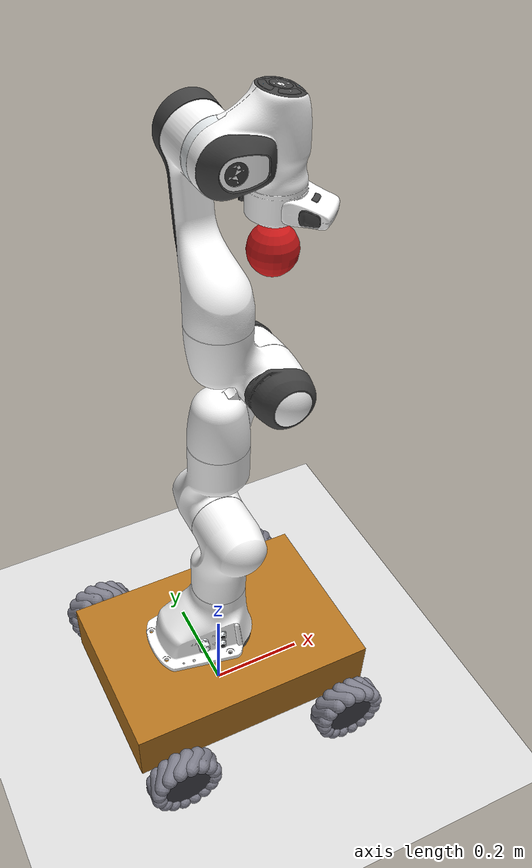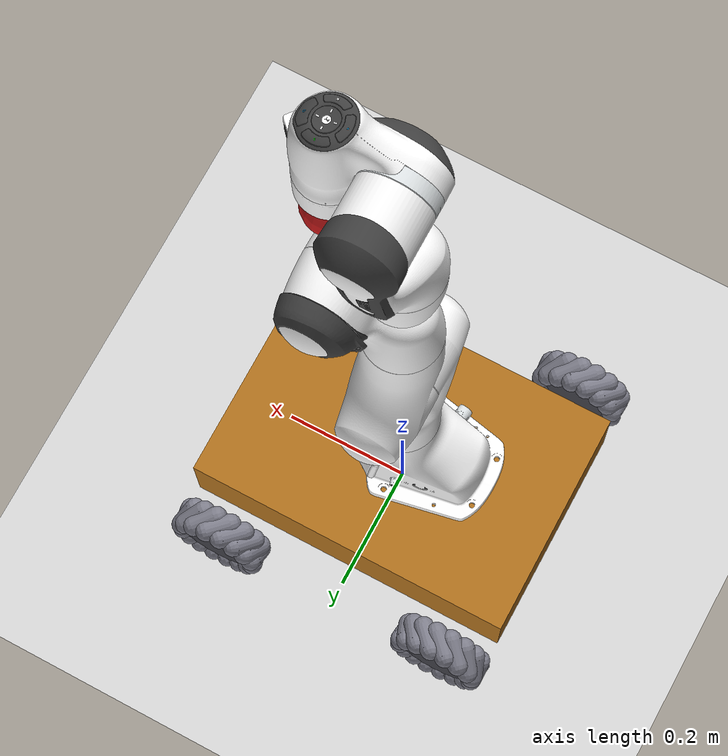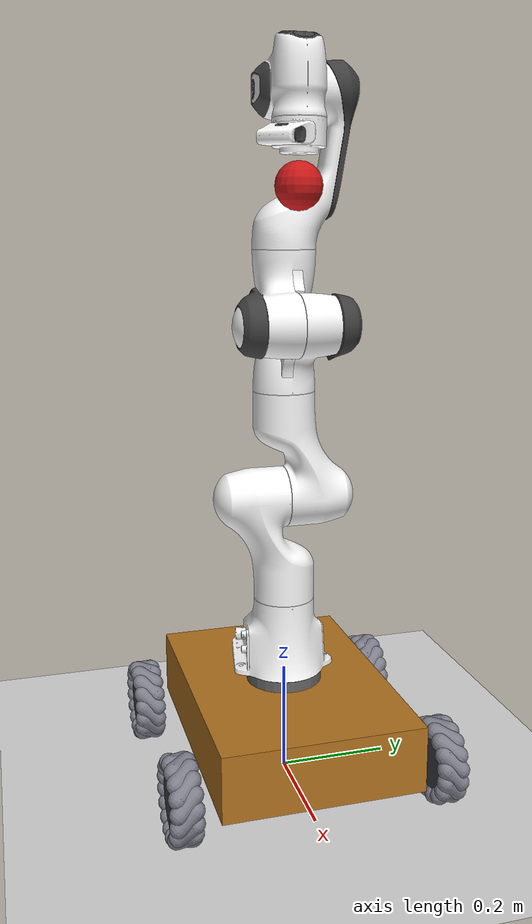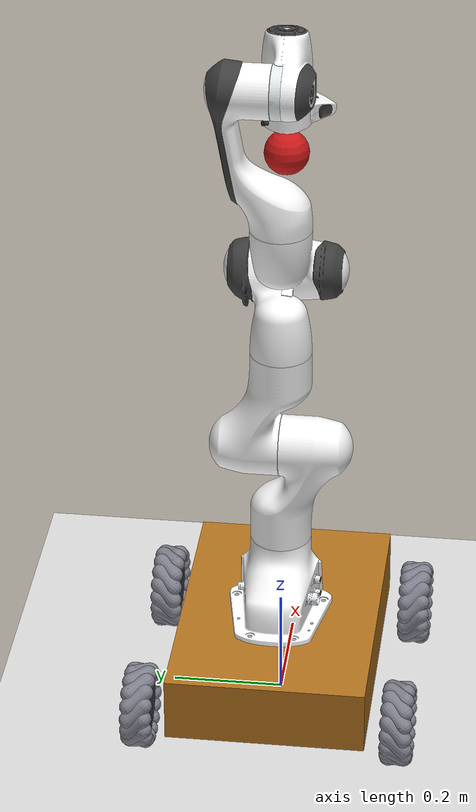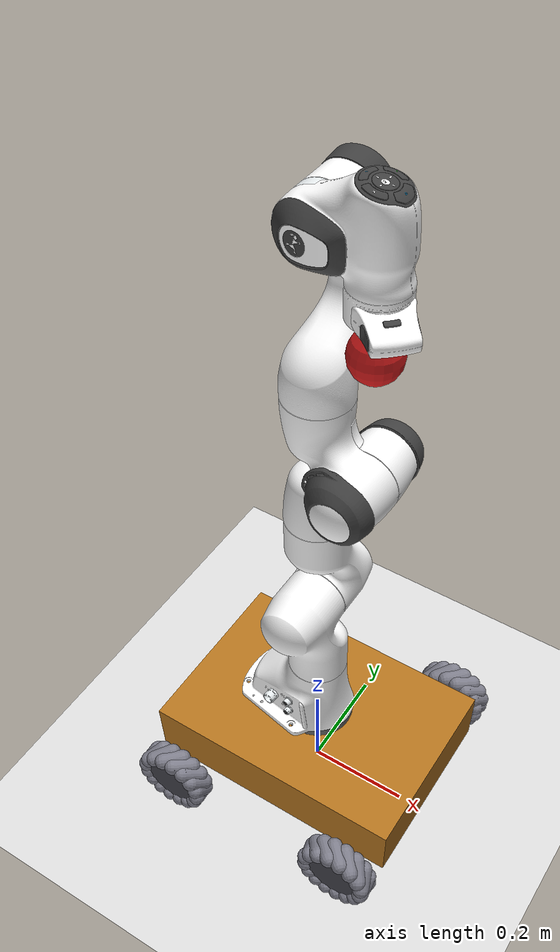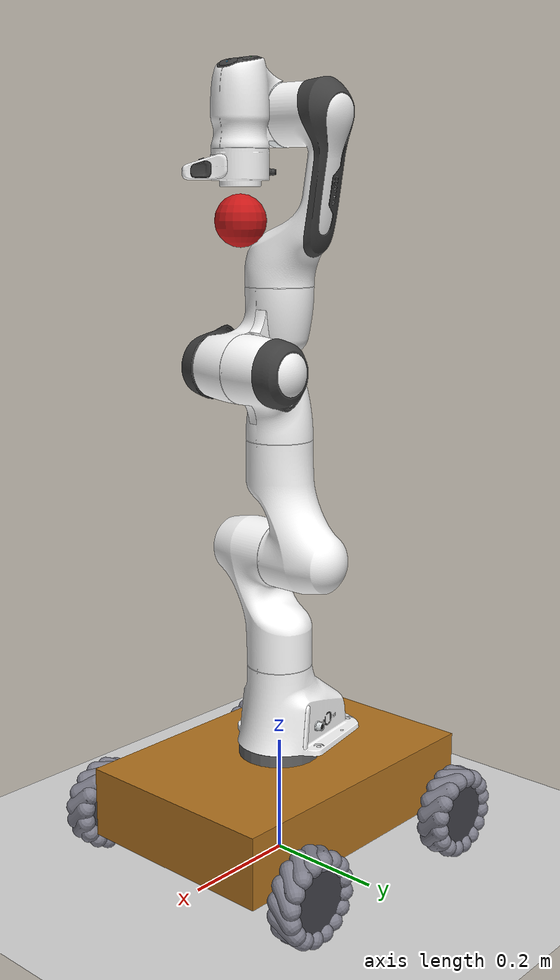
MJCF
<mujoco model="robobench_scene">
  <include file="robot.xml"/>
  <statistic center="0 0 0.3" extent="1.2"/>
  <worldbody>
    <light pos="0 0 3" dir="0 0 -1" directional="true"/>
    <geom name="floor" type="plane" size="0 0 0.05" contype="1" conaffinity="3"
          friction="0.9 0.005 0.0001" rgba="0.85 0.85 0.85 1"/>
  </worldbody>
</mujoco>

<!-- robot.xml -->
<mujoco model="robobench_base">
  <compiler angle="radian" meshdir="../../../../../assets/robots/franka_emika_panda/assets/"/>

  <option impratio="10" integrator="implicitfast" cone="elliptic">
    <flag multiccd="enable"/>
  </option>

  <size nkey="1"/>

  <default>
    <default class="arm_main">
      <default class="arm_panda">
        <material shininess="0.25"/>
        <joint range="-2.8973 2.8973" armature="0.1" damping="1"/>
        <site size="0.001 0.005 0.005" group="4" rgba="0.5 0.5 0.5 0.3"/>
        <general ctrlrange="-2.8973 2.8973" forcerange="-87 87" biastype="affine"/>
        <default class="arm_finger">
          <joint type="slide" range="0 0.04"/>
        </default>
        <default class="arm_panda/visual">
          <geom type="mesh" contype="0" conaffinity="0" group="2"/>
        </default>
        <default class="arm_panda/collision">
          <geom type="mesh" group="3"/>
        </default>
      </default>
    </default>
  </default>

  <asset>
    <material name="arm_white" class="arm_panda"/>
    <material name="arm_off_white" class="arm_panda" rgba="0.901961 0.921569 0.929412 1"/>
    <material name="arm_dark_grey" class="arm_panda" rgba="0.25 0.25 0.25 1"/>
    <material name="arm_green" class="arm_panda" rgba="0 1 0 1"/>
    <material name="arm_light_blue" class="arm_panda" rgba="0.039216 0.541176 0.780392 1"/>
    <mesh name="arm_link0_c" file="link0.stl"/>
    <mesh name="arm_link1_c" file="link1.stl"/>
    <mesh name="arm_link2_c" file="link2.stl"/>
    <mesh name="arm_link3_c" file="link3.stl"/>
    <mesh name="arm_link4_c" file="link4.stl"/>
    <mesh name="arm_link5_c0" file="link5_collision_0.obj"/>
    <mesh name="arm_link5_c1" file="link5_collision_1.obj"/>
    <mesh name="arm_link5_c2" file="link5_collision_2.obj"/>
    <mesh name="arm_link6_c" file="link6.stl"/>
    <mesh name="arm_link7_c" file="link7.stl"/>
    <mesh name="arm_link0_0" file="link0_0.obj"/>
    <mesh name="arm_link0_1" file="link0_1.obj"/>
    <mesh name="arm_link0_2" file="link0_2.obj"/>
    <mesh name="arm_link0_3" file="link0_3.obj"/>
    <mesh name="arm_link0_4" file="link0_4.obj"/>
    <mesh name="arm_link0_5" file="link0_5.obj"/>
    <mesh name="arm_link0_7" file="link0_7.obj"/>
    <mesh name="arm_link0_8" file="link0_8.obj"/>
    <mesh name="arm_link0_9" file="link0_9.obj"/>
    <mesh name="arm_link0_10" file="link0_10.obj"/>
    <mesh name="arm_link0_11" file="link0_11.obj"/>
    <mesh name="arm_link1" file="link1.obj"/>
    <mesh name="arm_link2" file="link2.obj"/>
    <mesh name="arm_link3_0" file="link3_0.obj"/>
    <mesh name="arm_link3_1" file="link3_1.obj"/>
    <mesh name="arm_link3_2" file="link3_2.obj"/>
    <mesh name="arm_link3_3" file="link3_3.obj"/>
    <mesh name="arm_link4_0" file="link4_0.obj"/>
    <mesh name="arm_link4_1" file="link4_1.obj"/>
    <mesh name="arm_link4_2" file="link4_2.obj"/>
    <mesh name="arm_link4_3" file="link4_3.obj"/>
    <mesh name="arm_link5_0" file="link5_0.obj"/>
    <mesh name="arm_link5_1" file="link5_1.obj"/>
    <mesh name="arm_link5_2" file="link5_2.obj"/>
    <mesh name="arm_link6_0" file="link6_0.obj"/>
    <mesh name="arm_link6_1" file="link6_1.obj"/>
    <mesh name="arm_link6_2" file="link6_2.obj"/>
    <mesh name="arm_link6_3" file="link6_3.obj"/>
    <mesh name="arm_link6_4" file="link6_4.obj"/>
    <mesh name="arm_link6_5" file="link6_5.obj"/>
    <mesh name="arm_link6_6" file="link6_6.obj"/>
    <mesh name="arm_link6_7" file="link6_7.obj"/>
    <mesh name="arm_link6_8" file="link6_8.obj"/>
    <mesh name="arm_link6_9" file="link6_9.obj"/>
    <mesh name="arm_link6_10" file="link6_10.obj"/>
    <mesh name="arm_link6_11" file="link6_11.obj"/>
    <mesh name="arm_link6_12" file="link6_12.obj"/>
    <mesh name="arm_link6_13" file="link6_13.obj"/>
    <mesh name="arm_link6_14" file="link6_14.obj"/>
    <mesh name="arm_link6_15" file="link6_15.obj"/>
    <mesh name="arm_link6_16" file="link6_16.obj"/>
    <mesh name="arm_link7_0" file="link7_0.obj"/>
    <mesh name="arm_link7_1" file="link7_1.obj"/>
    <mesh name="arm_link7_2" file="link7_2.obj"/>
    <mesh name="arm_link7_3" file="link7_3.obj"/>
    <mesh name="arm_link7_4" file="link7_4.obj"/>
    <mesh name="arm_link7_5" file="link7_5.obj"/>
    <mesh name="arm_link7_6" file="link7_6.obj"/>
    <mesh name="arm_link7_7" file="link7_7.obj"/>
  </asset>

  <worldbody>
    <body name="base" pos="0 0 0.076">
      <joint name="base_free" type="free"/>
      <geom name="chassis" size="0.26 0.18 0.06" pos="0 0 0.045" type="box" mass="18" rgba="0.7 0.45 0.12 1"/>
      <geom name="arm_mount" size="0.07 0.01" pos="0 0 0.115" type="cylinder" mass="1" rgba="0.4 0.4 0.4 1"/>
      <site name="arm_mount_site" pos="0 0 0.125" size="0.01"/>
      <site name="base_center" pos="0 0 0" size="0.01"/>
      <body name="battery" pos="0 0 0.02">
        <geom name="battery_geom" size="0.14 0.09 0.04" type="box" mass="10" rgba="0.15 0.3 0.6 1"/>
      </body>
      <body name="wheel_FL" pos="0.19 0.235 0">
        <joint name="drive_FL" pos="0 0 0" axis="0 1 0" armature="0.002" damping="0.01"/>
        <geom name="hub_FL" size="0.052 0.02" quat="0.707107 0.707107 0 0" type="cylinder" mass="1.2" rgba="0.25 0.25 0.28 1"/>
        <body name="roller_FL_0" pos="0.06 0 0">
          <joint name="rollerj_FL_0" pos="0 0 0" axis="0 -0.707107 0.707107" armature="1e-05" damping="0.0005" frictionloss="0.002"/>
          <geom name="rollerg_FL_0" size="0.016 0.019403" quat="0.382683 -0.92388 0 0" type="capsule" contype="2" friction="0.9" mass="0.04" rgba="0.5 0.5 0.55 1"/>
        </body>
        <body name="roller_FL_1" pos="0.05543 0 0.02296">
          <joint name="rollerj_FL_1" pos="0 0 0" axis="-0.270598 -0.707107 0.653281" armature="1e-05" damping="0.0005" frictionloss="0.002"/>
          <geom name="rollerg_FL_1" size="0.016 0.0194058" quat="0.416284 -0.849187 0.324944 0" type="capsule" contype="2" friction="0.9" mass="0.04" rgba="0.5 0.5 0.55 1"/>
        </body>
        <body name="roller_FL_2" pos="0.04243 0 0.04243">
          <joint name="rollerj_FL_2" pos="0 0 0" axis="-0.5 -0.707107 0.5" armature="1e-05" damping="0.0005" frictionloss="0.002"/>
          <geom name="rollerg_FL_2" size="0.016 0.0194115" quat="0.499891 -0.706952 0.500328 0" type="capsule" contype="2" friction="0.9" mass="0.04" rgba="0.5 0.5 0.55 1"/>
        </body>
        <body name="roller_FL_3" pos="0.02296 0 0.05543">
          <joint name="rollerj_FL_3" pos="0 0 0" axis="-0.653281 -0.707107 0.270598" armature="1e-05" damping="0.0005" frictionloss="0.002"/>
          <geom name="rollerg_FL_3" size="0.016 0.0194058" quat="0.60393 -0.585339 0.540969 0" type="capsule" contype="2" friction="0.9" mass="0.04" rgba="0.5 0.5 0.55 1"/>
        </body>
        <body name="roller_FL_4" pos="0 0 0.06">
          <joint name="rollerj_FL_4" pos="0 0 0" axis="-0.707107 -0.707107 0" armature="1e-05" damping="0.0005" frictionloss="0.002"/>
          <geom name="rollerg_FL_4" size="0.016 0.019403" quat="0.707107 -0.5 0.5 0" type="capsule" contype="2" friction="0.9" mass="0.04" rgba="0.5 0.5 0.55 1"/>
        </body>
        <body name="roller_FL_5" pos="-0.02296 0 0.05543">
          <joint name="rollerj_FL_5" pos="0 0 0" axis="-0.653281 -0.707107 -0.270598" armature="1e-05" damping="0.0005" frictionloss="0.002"/>
          <geom name="rollerg_FL_5" size="0.016 0.0194058" quat="0.797038 -0.443522 0.409902 0" type="capsule" contype="2" friction="0.9" mass="0.04" rgba="0.5 0.5 0.55 1"/>
        </body>
        <body name="roller_FL_6" pos="-0.04243 0 0.04243">
          <joint name="rollerj_FL_6" pos="0 0 0" axis="-0.5 -0.707107 -0.5" armature="1e-05" damping="0.0005" frictionloss="0.002"/>
          <geom name="rollerg_FL_6" size="0.016 0.0194115" quat="0.866089 -0.40804 0.28878 0" type="capsule" contype="2" friction="0.9" mass="0.04" rgba="0.5 0.5 0.55 1"/>
        </body>
        <body name="roller_FL_7" pos="-0.05543 0 0.02296">
          <joint name="rollerj_FL_7" pos="0 0 0" axis="-0.270598 -0.707107 -0.653281" armature="1e-05" damping="0.0005" frictionloss="0.002"/>
          <geom name="rollerg_FL_7" size="0.016 0.0194058" quat="0.909234 -0.388792 0.148773 0" type="capsule" contype="2" friction="0.9" mass="0.04" rgba="0.5 0.5 0.55 1"/>
        </body>
        <body name="roller_FL_8" pos="-0.06 0 0">
          <joint name="rollerj_FL_8" pos="0 0 0" axis="0 -0.707107 -0.707107" armature="1e-05" damping="0.0005" frictionloss="0.002"/>
          <geom name="rollerg_FL_8" size="0.016 0.019403" quat="0.92388 -0.382683 0 0" type="capsule" contype="2" friction="0.9" mass="0.04" rgba="0.5 0.5 0.55 1"/>
        </body>
        <body name="roller_FL_9" pos="-0.05543 0 -0.02296">
          <joint name="rollerj_FL_9" pos="0 0 0" axis="0.270598 -0.707107 -0.653281" armature="1e-05" damping="0.0005" frictionloss="0.002"/>
          <geom name="rollerg_FL_9" size="0.016 0.0194058" quat="0.909234 -0.388792 -0.148773 0" type="capsule" contype="2" friction="0.9" mass="0.04" rgba="0.5 0.5 0.55 1"/>
        </body>
        <body name="roller_FL_10" pos="-0.04243 0 -0.04243">
          <joint name="rollerj_FL_10" pos="0 0 0" axis="0.5 -0.707107 -0.5" armature="1e-05" damping="0.0005" frictionloss="0.002"/>
          <geom name="rollerg_FL_10" size="0.016 0.0194115" quat="0.866089 -0.40804 -0.28878 0" type="capsule" contype="2" friction="0.9" mass="0.04" rgba="0.5 0.5 0.55 1"/>
        </body>
        <body name="roller_FL_11" pos="-0.02296 0 -0.05543">
          <joint name="rollerj_FL_11" pos="0 0 0" axis="0.653281 -0.707107 -0.270598" armature="1e-05" damping="0.0005" frictionloss="0.002"/>
          <geom name="rollerg_FL_11" size="0.016 0.0194058" quat="0.797038 -0.443522 -0.409902 0" type="capsule" contype="2" friction="0.9" mass="0.04" rgba="0.5 0.5 0.55 1"/>
        </body>
        <body name="roller_FL_12" pos="0 0 -0.06">
          <joint name="rollerj_FL_12" pos="0 0 0" axis="0.707107 -0.707107 0" armature="1e-05" damping="0.0005" frictionloss="0.002"/>
          <geom name="rollerg_FL_12" size="0.016 0.019403" quat="0.707107 -0.5 -0.5 0" type="capsule" contype="2" friction="0.9" mass="0.04" rgba="0.5 0.5 0.55 1"/>
        </body>
        <body name="roller_FL_13" pos="0.02296 0 -0.05543">
          <joint name="rollerj_FL_13" pos="0 0 0" axis="0.653281 -0.707107 0.270598" armature="1e-05" damping="0.0005" frictionloss="0.002"/>
          <geom name="rollerg_FL_13" size="0.016 0.0194058" quat="0.60393 -0.585339 -0.540969 0" type="capsule" contype="2" friction="0.9" mass="0.04" rgba="0.5 0.5 0.55 1"/>
        </body>
        <body name="roller_FL_14" pos="0.04243 0 -0.04243">
          <joint name="rollerj_FL_14" pos="0 0 0" axis="0.5 -0.707107 0.5" armature="1e-05" damping="0.0005" frictionloss="0.002"/>
          <geom name="rollerg_FL_14" size="0.016 0.0194115" quat="0.499891 -0.706952 -0.500328 0" type="capsule" contype="2" friction="0.9" mass="0.04" rgba="0.5 0.5 0.55 1"/>
        </body>
        <body name="roller_FL_15" pos="0.05543 0 -0.02296">
          <joint name="rollerj_FL_15" pos="0 0 0" axis="0.270598 -0.707107 0.653281" armature="1e-05" damping="0.0005" frictionloss="0.002"/>
          <geom name="rollerg_FL_15" size="0.016 0.0194058" quat="0.416284 -0.849187 -0.324944 0" type="capsule" contype="2" friction="0.9" mass="0.04" rgba="0.5 0.5 0.55 1"/>
        </body>
      </body>
      <body name="wheel_FR" pos="0.19 -0.235 0">
        <joint name="drive_FR" pos="0 0 0" axis="0 1 0" armature="0.002" damping="0.01"/>
        <geom name="hub_FR" size="0.052 0.02" quat="0.707107 0.707107 0 0" type="cylinder" mass="1.2" rgba="0.25 0.25 0.28 1"/>
        <body name="roller_FR_0" pos="0.06 0 0">
          <joint name="rollerj_FR_0" pos="0 0 0" axis="0 0.707107 0.707107" armature="1e-05" damping="0.0005" frictionloss="0.002"/>
          <geom name="rollerg_FR_0" size="0.016 0.019403" quat="0.382683 0.92388 0 0" type="capsule" contype="2" friction="0.9" mass="0.04" rgba="0.5 0.5 0.55 1"/>
        </body>
        <body name="roller_FR_1" pos="0.05543 0 0.02296">
          <joint name="rollerj_FR_1" pos="0 0 0" axis="-0.270598 0.707107 0.653281" armature="1e-05" damping="0.0005" frictionloss="0.002"/>
          <geom name="rollerg_FR_1" size="0.016 0.0194058" quat="0.416284 0.849187 0.324944 0" type="capsule" contype="2" friction="0.9" mass="0.04" rgba="0.5 0.5 0.55 1"/>
        </body>
        <body name="roller_FR_2" pos="0.04243 0 0.04243">
          <joint name="rollerj_FR_2" pos="0 0 0" axis="-0.5 0.707107 0.5" armature="1e-05" damping="0.0005" frictionloss="0.002"/>
          <geom name="rollerg_FR_2" size="0.016 0.0194115" quat="0.499891 0.706952 0.500328 0" type="capsule" contype="2" friction="0.9" mass="0.04" rgba="0.5 0.5 0.55 1"/>
        </body>
        <body name="roller_FR_3" pos="0.02296 0 0.05543">
          <joint name="rollerj_FR_3" pos="0 0 0" axis="-0.653281 0.707107 0.270598" armature="1e-05" damping="0.0005" frictionloss="0.002"/>
          <geom name="rollerg_FR_3" size="0.016 0.0194058" quat="0.60393 0.585339 0.540969 0" type="capsule" contype="2" friction="0.9" mass="0.04" rgba="0.5 0.5 0.55 1"/>
        </body>
        <body name="roller_FR_4" pos="0 0 0.06">
          <joint name="rollerj_FR_4" pos="0 0 0" axis="-0.707107 0.707107 0" armature="1e-05" damping="0.0005" frictionloss="0.002"/>
          <geom name="rollerg_FR_4" size="0.016 0.019403" quat="0.707107 0.5 0.5 0" type="capsule" contype="2" friction="0.9" mass="0.04" rgba="0.5 0.5 0.55 1"/>
        </body>
        <body name="roller_FR_5" pos="-0.02296 0 0.05543">
          <joint name="rollerj_FR_5" pos="0 0 0" axis="-0.653281 0.707107 -0.270598" armature="1e-05" damping="0.0005" frictionloss="0.002"/>
          <geom name="rollerg_FR_5" size="0.016 0.0194058" quat="0.797038 0.443522 0.409902 0" type="capsule" contype="2" friction="0.9" mass="0.04" rgba="0.5 0.5 0.55 1"/>
        </body>
        <body name="roller_FR_6" pos="-0.04243 0 0.04243">
          <joint name="rollerj_FR_6" pos="0 0 0" axis="-0.5 0.707107 -0.5" armature="1e-05" damping="0.0005" frictionloss="0.002"/>
          <geom name="rollerg_FR_6" size="0.016 0.0194115" quat="0.866089 0.40804 0.28878 0" type="capsule" contype="2" friction="0.9" mass="0.04" rgba="0.5 0.5 0.55 1"/>
        </body>
        <body name="roller_FR_7" pos="-0.05543 0 0.02296">
          <joint name="rollerj_FR_7" pos="0 0 0" axis="-0.270598 0.707107 -0.653281" armature="1e-05" damping="0.0005" frictionloss="0.002"/>
          <geom name="rollerg_FR_7" size="0.016 0.0194058" quat="0.909234 0.388792 0.148773 0" type="capsule" contype="2" friction="0.9" mass="0.04" rgba="0.5 0.5 0.55 1"/>
        </body>
        <body name="roller_FR_8" pos="-0.06 0 0">
          <joint name="rollerj_FR_8" pos="0 0 0" axis="0 0.707107 -0.707107" armature="1e-05" damping="0.0005" frictionloss="0.002"/>
          <geom name="rollerg_FR_8" size="0.016 0.019403" quat="0.92388 0.382683 0 0" type="capsule" contype="2" friction="0.9" mass="0.04" rgba="0.5 0.5 0.55 1"/>
        </body>
        <body name="roller_FR_9" pos="-0.05543 0 -0.02296">
          <joint name="rollerj_FR_9" pos="0 0 0" axis="0.270598 0.707107 -0.653281" armature="1e-05" damping="0.0005" frictionloss="0.002"/>
          <geom name="rollerg_FR_9" size="0.016 0.0194058" quat="0.909234 0.388792 -0.148773 0" type="capsule" contype="2" friction="0.9" mass="0.04" rgba="0.5 0.5 0.55 1"/>
        </body>
        <body name="roller_FR_10" pos="-0.04243 0 -0.04243">
          <joint name="rollerj_FR_10" pos="0 0 0" axis="0.5 0.707107 -0.5" armature="1e-05" damping="0.0005" frictionloss="0.002"/>
          <geom name="rollerg_FR_10" size="0.016 0.0194115" quat="0.866089 0.40804 -0.28878 0" type="capsule" contype="2" friction="0.9" mass="0.04" rgba="0.5 0.5 0.55 1"/>
        </body>
        <body name="roller_FR_11" pos="-0.02296 0 -0.05543">
          <joint name="rollerj_FR_11" pos="0 0 0" axis="0.653281 0.707107 -0.270598" armature="1e-05" damping="0.0005" frictionloss="0.002"/>
          <geom name="rollerg_FR_11" size="0.016 0.0194058" quat="0.797038 0.443522 -0.409902 0" type="capsule" contype="2" friction="0.9" mass="0.04" rgba="0.5 0.5 0.55 1"/>
        </body>
        <body name="roller_FR_12" pos="0 0 -0.06">
          <joint name="rollerj_FR_12" pos="0 0 0" axis="0.707107 0.707107 0" armature="1e-05" damping="0.0005" frictionloss="0.002"/>
          <geom name="rollerg_FR_12" size="0.016 0.019403" quat="0.707107 0.5 -0.5 0" type="capsule" contype="2" friction="0.9" mass="0.04" rgba="0.5 0.5 0.55 1"/>
        </body>
        <body name="roller_FR_13" pos="0.02296 0 -0.05543">
          <joint name="rollerj_FR_13" pos="0 0 0" axis="0.653281 0.707107 0.270598" armature="1e-05" damping="0.0005" frictionloss="0.002"/>
          <geom name="rollerg_FR_13" size="0.016 0.0194058" quat="0.60393 0.585339 -0.540969 0" type="capsule" contype="2" friction="0.9" mass="0.04" rgba="0.5 0.5 0.55 1"/>
        </body>
        <body name="roller_FR_14" pos="0.04243 0 -0.04243">
          <joint name="rollerj_FR_14" pos="0 0 0" axis="0.5 0.707107 0.5" armature="1e-05" damping="0.0005" frictionloss="0.002"/>
          <geom name="rollerg_FR_14" size="0.016 0.0194115" quat="0.499891 0.706952 -0.500328 0" type="capsule" contype="2" friction="0.9" mass="0.04" rgba="0.5 0.5 0.55 1"/>
        </body>
        <body name="roller_FR_15" pos="0.05543 0 -0.02296">
          <joint name="rollerj_FR_15" pos="0 0 0" axis="0.270598 0.707107 0.653281" armature="1e-05" damping="0.0005" frictionloss="0.002"/>
          <geom name="rollerg_FR_15" size="0.016 0.0194058" quat="0.416284 0.849187 -0.324944 0" type="capsule" contype="2" friction="0.9" mass="0.04" rgba="0.5 0.5 0.55 1"/>
        </body>
      </body>
      <body name="wheel_RL" pos="-0.19 0.235 0">
        <joint name="drive_RL" pos="0 0 0" axis="0 1 0" armature="0.002" damping="0.01"/>
        <geom name="hub_RL" size="0.052 0.02" quat="0.707107 0.707107 0 0" type="cylinder" mass="1.2" rgba="0.25 0.25 0.28 1"/>
        <body name="roller_RL_0" pos="0.06 0 0">
          <joint name="rollerj_RL_0" pos="0 0 0" axis="0 0.707107 0.707107" armature="1e-05" damping="0.0005" frictionloss="0.002"/>
          <geom name="rollerg_RL_0" size="0.016 0.019403" quat="0.382683 0.92388 0 0" type="capsule" contype="2" friction="0.9" mass="0.04" rgba="0.5 0.5 0.55 1"/>
        </body>
        <body name="roller_RL_1" pos="0.05543 0 0.02296">
          <joint name="rollerj_RL_1" pos="0 0 0" axis="-0.270598 0.707107 0.653281" armature="1e-05" damping="0.0005" frictionloss="0.002"/>
          <geom name="rollerg_RL_1" size="0.016 0.0194058" quat="0.416284 0.849187 0.324944 0" type="capsule" contype="2" friction="0.9" mass="0.04" rgba="0.5 0.5 0.55 1"/>
        </body>
        <body name="roller_RL_2" pos="0.04243 0 0.04243">
          <joint name="rollerj_RL_2" pos="0 0 0" axis="-0.5 0.707107 0.5" armature="1e-05" damping="0.0005" frictionloss="0.002"/>
          <geom name="rollerg_RL_2" size="0.016 0.0194115" quat="0.499891 0.706952 0.500328 0" type="capsule" contype="2" friction="0.9" mass="0.04" rgba="0.5 0.5 0.55 1"/>
        </body>
        <body name="roller_RL_3" pos="0.02296 0 0.05543">
          <joint name="rollerj_RL_3" pos="0 0 0" axis="-0.653281 0.707107 0.270598" armature="1e-05" damping="0.0005" frictionloss="0.002"/>
          <geom name="rollerg_RL_3" size="0.016 0.0194058" quat="0.60393 0.585339 0.540969 0" type="capsule" contype="2" friction="0.9" mass="0.04" rgba="0.5 0.5 0.55 1"/>
        </body>
        <body name="roller_RL_4" pos="0 0 0.06">
          <joint name="rollerj_RL_4" pos="0 0 0" axis="-0.707107 0.707107 0" armature="1e-05" damping="0.0005" frictionloss="0.002"/>
          <geom name="rollerg_RL_4" size="0.016 0.019403" quat="0.707107 0.5 0.5 0" type="capsule" contype="2" friction="0.9" mass="0.04" rgba="0.5 0.5 0.55 1"/>
        </body>
        <body name="roller_RL_5" pos="-0.02296 0 0.05543">
          <joint name="rollerj_RL_5" pos="0 0 0" axis="-0.653281 0.707107 -0.270598" armature="1e-05" damping="0.0005" frictionloss="0.002"/>
          <geom name="rollerg_RL_5" size="0.016 0.0194058" quat="0.797038 0.443522 0.409902 0" type="capsule" contype="2" friction="0.9" mass="0.04" rgba="0.5 0.5 0.55 1"/>
        </body>
        <body name="roller_RL_6" pos="-0.04243 0 0.04243">
          <joint name="rollerj_RL_6" pos="0 0 0" axis="-0.5 0.707107 -0.5" armature="1e-05" damping="0.0005" frictionloss="0.002"/>
          <geom name="rollerg_RL_6" size="0.016 0.0194115" quat="0.866089 0.40804 0.28878 0" type="capsule" contype="2" friction="0.9" mass="0.04" rgba="0.5 0.5 0.55 1"/>
        </body>
        <body name="roller_RL_7" pos="-0.05543 0 0.02296">
          <joint name="rollerj_RL_7" pos="0 0 0" axis="-0.270598 0.707107 -0.653281" armature="1e-05" damping="0.0005" frictionloss="0.002"/>
          <geom name="rollerg_RL_7" size="0.016 0.0194058" quat="0.909234 0.388792 0.148773 0" type="capsule" contype="2" friction="0.9" mass="0.04" rgba="0.5 0.5 0.55 1"/>
        </body>
        <body name="roller_RL_8" pos="-0.06 0 0">
          <joint name="rollerj_RL_8" pos="0 0 0" axis="0 0.707107 -0.707107" armature="1e-05" damping="0.0005" frictionloss="0.002"/>
          <geom name="rollerg_RL_8" size="0.016 0.019403" quat="0.92388 0.382683 0 0" type="capsule" contype="2" friction="0.9" mass="0.04" rgba="0.5 0.5 0.55 1"/>
        </body>
        <body name="roller_RL_9" pos="-0.05543 0 -0.02296">
          <joint name="rollerj_RL_9" pos="0 0 0" axis="0.270598 0.707107 -0.653281" armature="1e-05" damping="0.0005" frictionloss="0.002"/>
          <geom name="rollerg_RL_9" size="0.016 0.0194058" quat="0.909234 0.388792 -0.148773 0" type="capsule" contype="2" friction="0.9" mass="0.04" rgba="0.5 0.5 0.55 1"/>
        </body>
        <body name="roller_RL_10" pos="-0.04243 0 -0.04243">
          <joint name="rollerj_RL_10" pos="0 0 0" axis="0.5 0.707107 -0.5" armature="1e-05" damping="0.0005" frictionloss="0.002"/>
          <geom name="rollerg_RL_10" size="0.016 0.0194115" quat="0.866089 0.40804 -0.28878 0" type="capsule" contype="2" friction="0.9" mass="0.04" rgba="0.5 0.5 0.55 1"/>
        </body>
        <body name="roller_RL_11" pos="-0.02296 0 -0.05543">
          <joint name="rollerj_RL_11" pos="0 0 0" axis="0.653281 0.707107 -0.270598" armature="1e-05" damping="0.0005" frictionloss="0.002"/>
          <geom name="rollerg_RL_11" size="0.016 0.0194058" quat="0.797038 0.443522 -0.409902 0" type="capsule" contype="2" friction="0.9" mass="0.04" rgba="0.5 0.5 0.55 1"/>
        </body>
        <body name="roller_RL_12" pos="0 0 -0.06">
          <joint name="rollerj_RL_12" pos="0 0 0" axis="0.707107 0.707107 0" armature="1e-05" damping="0.0005" frictionloss="0.002"/>
          <geom name="rollerg_RL_12" size="0.016 0.019403" quat="0.707107 0.5 -0.5 0" type="capsule" contype="2" friction="0.9" mass="0.04" rgba="0.5 0.5 0.55 1"/>
        </body>
        <body name="roller_RL_13" pos="0.02296 0 -0.05543">
          <joint name="rollerj_RL_13" pos="0 0 0" axis="0.653281 0.707107 0.270598" armature="1e-05" damping="0.0005" frictionloss="0.002"/>
          <geom name="rollerg_RL_13" size="0.016 0.0194058" quat="0.60393 0.585339 -0.540969 0" type="capsule" contype="2" friction="0.9" mass="0.04" rgba="0.5 0.5 0.55 1"/>
        </body>
        <body name="roller_RL_14" pos="0.04243 0 -0.04243">
          <joint name="rollerj_RL_14" pos="0 0 0" axis="0.5 0.707107 0.5" armature="1e-05" damping="0.0005" frictionloss="0.002"/>
          <geom name="rollerg_RL_14" size="0.016 0.0194115" quat="0.499891 0.706952 -0.500328 0" type="capsule" contype="2" friction="0.9" mass="0.04" rgba="0.5 0.5 0.55 1"/>
        </body>
        <body name="roller_RL_15" pos="0.05543 0 -0.02296">
          <joint name="rollerj_RL_15" pos="0 0 0" axis="0.270598 0.707107 0.653281" armature="1e-05" damping="0.0005" frictionloss="0.002"/>
          <geom name="rollerg_RL_15" size="0.016 0.0194058" quat="0.416284 0.849187 -0.324944 0" type="capsule" contype="2" friction="0.9" mass="0.04" rgba="0.5 0.5 0.55 1"/>
        </body>
      </body>
      <body name="wheel_RR" pos="-0.19 -0.235 0">
        <joint name="drive_RR" pos="0 0 0" axis="0 1 0" armature="0.002" damping="0.01"/>
        <geom name="hub_RR" size="0.052 0.02" quat="0.707107 0.707107 0 0" type="cylinder" mass="1.2" rgba="0.25 0.25 0.28 1"/>
        <body name="roller_RR_0" pos="0.06 0 0">
          <joint name="rollerj_RR_0" pos="0 0 0" axis="0 -0.707107 0.707107" armature="1e-05" damping="0.0005" frictionloss="0.002"/>
          <geom name="rollerg_RR_0" size="0.016 0.019403" quat="0.382683 -0.92388 0 0" type="capsule" contype="2" friction="0.9" mass="0.04" rgba="0.5 0.5 0.55 1"/>
        </body>
        <body name="roller_RR_1" pos="0.05543 0 0.02296">
          <joint name="rollerj_RR_1" pos="0 0 0" axis="-0.270598 -0.707107 0.653281" armature="1e-05" damping="0.0005" frictionloss="0.002"/>
          <geom name="rollerg_RR_1" size="0.016 0.0194058" quat="0.416284 -0.849187 0.324944 0" type="capsule" contype="2" friction="0.9" mass="0.04" rgba="0.5 0.5 0.55 1"/>
        </body>
        <body name="roller_RR_2" pos="0.04243 0 0.04243">
          <joint name="rollerj_RR_2" pos="0 0 0" axis="-0.5 -0.707107 0.5" armature="1e-05" damping="0.0005" frictionloss="0.002"/>
          <geom name="rollerg_RR_2" size="0.016 0.0194115" quat="0.499891 -0.706952 0.500328 0" type="capsule" contype="2" friction="0.9" mass="0.04" rgba="0.5 0.5 0.55 1"/>
        </body>
        <body name="roller_RR_3" pos="0.02296 0 0.05543">
          <joint name="rollerj_RR_3" pos="0 0 0" axis="-0.653281 -0.707107 0.270598" armature="1e-05" damping="0.0005" frictionloss="0.002"/>
          <geom name="rollerg_RR_3" size="0.016 0.0194058" quat="0.60393 -0.585339 0.540969 0" type="capsule" contype="2" friction="0.9" mass="0.04" rgba="0.5 0.5 0.55 1"/>
        </body>
        <body name="roller_RR_4" pos="0 0 0.06">
          <joint name="rollerj_RR_4" pos="0 0 0" axis="-0.707107 -0.707107 0" armature="1e-05" damping="0.0005" frictionloss="0.002"/>
          <geom name="rollerg_RR_4" size="0.016 0.019403" quat="0.707107 -0.5 0.5 0" type="capsule" contype="2" friction="0.9" mass="0.04" rgba="0.5 0.5 0.55 1"/>
        </body>
        <body name="roller_RR_5" pos="-0.02296 0 0.05543">
          <joint name="rollerj_RR_5" pos="0 0 0" axis="-0.653281 -0.707107 -0.270598" armature="1e-05" damping="0.0005" frictionloss="0.002"/>
          <geom name="rollerg_RR_5" size="0.016 0.0194058" quat="0.797038 -0.443522 0.409902 0" type="capsule" contype="2" friction="0.9" mass="0.04" rgba="0.5 0.5 0.55 1"/>
        </body>
        <body name="roller_RR_6" pos="-0.04243 0 0.04243">
          <joint name="rollerj_RR_6" pos="0 0 0" axis="-0.5 -0.707107 -0.5" armature="1e-05" damping="0.0005" frictionloss="0.002"/>
          <geom name="rollerg_RR_6" size="0.016 0.0194115" quat="0.866089 -0.40804 0.28878 0" type="capsule" contype="2" friction="0.9" mass="0.04" rgba="0.5 0.5 0.55 1"/>
        </body>
        <body name="roller_RR_7" pos="-0.05543 0 0.02296">
          <joint name="rollerj_RR_7" pos="0 0 0" axis="-0.270598 -0.707107 -0.653281" armature="1e-05" damping="0.0005" frictionloss="0.002"/>
          <geom name="rollerg_RR_7" size="0.016 0.0194058" quat="0.909234 -0.388792 0.148773 0" type="capsule" contype="2" friction="0.9" mass="0.04" rgba="0.5 0.5 0.55 1"/>
        </body>
        <body name="roller_RR_8" pos="-0.06 0 0">
          <joint name="rollerj_RR_8" pos="0 0 0" axis="0 -0.707107 -0.707107" armature="1e-05" damping="0.0005" frictionloss="0.002"/>
          <geom name="rollerg_RR_8" size="0.016 0.019403" quat="0.92388 -0.382683 0 0" type="capsule" contype="2" friction="0.9" mass="0.04" rgba="0.5 0.5 0.55 1"/>
        </body>
        <body name="roller_RR_9" pos="-0.05543 0 -0.02296">
          <joint name="rollerj_RR_9" pos="0 0 0" axis="0.270598 -0.707107 -0.653281" armature="1e-05" damping="0.0005" frictionloss="0.002"/>
          <geom name="rollerg_RR_9" size="0.016 0.0194058" quat="0.909234 -0.388792 -0.148773 0" type="capsule" contype="2" friction="0.9" mass="0.04" rgba="0.5 0.5 0.55 1"/>
        </body>
        <body name="roller_RR_10" pos="-0.04243 0 -0.04243">
          <joint name="rollerj_RR_10" pos="0 0 0" axis="0.5 -0.707107 -0.5" armature="1e-05" damping="0.0005" frictionloss="0.002"/>
          <geom name="rollerg_RR_10" size="0.016 0.0194115" quat="0.866089 -0.40804 -0.28878 0" type="capsule" contype="2" friction="0.9" mass="0.04" rgba="0.5 0.5 0.55 1"/>
        </body>
        <body name="roller_RR_11" pos="-0.02296 0 -0.05543">
          <joint name="rollerj_RR_11" pos="0 0 0" axis="0.653281 -0.707107 -0.270598" armature="1e-05" damping="0.0005" frictionloss="0.002"/>
          <geom name="rollerg_RR_11" size="0.016 0.0194058" quat="0.797038 -0.443522 -0.409902 0" type="capsule" contype="2" friction="0.9" mass="0.04" rgba="0.5 0.5 0.55 1"/>
        </body>
        <body name="roller_RR_12" pos="0 0 -0.06">
          <joint name="rollerj_RR_12" pos="0 0 0" axis="0.707107 -0.707107 0" armature="1e-05" damping="0.0005" frictionloss="0.002"/>
          <geom name="rollerg_RR_12" size="0.016 0.019403" quat="0.707107 -0.5 -0.5 0" type="capsule" contype="2" friction="0.9" mass="0.04" rgba="0.5 0.5 0.55 1"/>
        </body>
        <body name="roller_RR_13" pos="0.02296 0 -0.05543">
          <joint name="rollerj_RR_13" pos="0 0 0" axis="0.653281 -0.707107 0.270598" armature="1e-05" damping="0.0005" frictionloss="0.002"/>
          <geom name="rollerg_RR_13" size="0.016 0.0194058" quat="0.60393 -0.585339 -0.540969 0" type="capsule" contype="2" friction="0.9" mass="0.04" rgba="0.5 0.5 0.55 1"/>
        </body>
        <body name="roller_RR_14" pos="0.04243 0 -0.04243">
          <joint name="rollerj_RR_14" pos="0 0 0" axis="0.5 -0.707107 0.5" armature="1e-05" damping="0.0005" frictionloss="0.002"/>
          <geom name="rollerg_RR_14" size="0.016 0.0194115" quat="0.499891 -0.706952 -0.500328 0" type="capsule" contype="2" friction="0.9" mass="0.04" rgba="0.5 0.5 0.55 1"/>
        </body>
        <body name="roller_RR_15" pos="0.05543 0 -0.02296">
          <joint name="rollerj_RR_15" pos="0 0 0" axis="0.270598 -0.707107 0.653281" armature="1e-05" damping="0.0005" frictionloss="0.002"/>
          <geom name="rollerg_RR_15" size="0.016 0.0194058" quat="0.416284 -0.849187 -0.324944 0" type="capsule" contype="2" friction="0.9" mass="0.04" rgba="0.5 0.5 0.55 1"/>
        </body>
      </body>
      <light name="arm_top" pos="0 0 2.125" dir="0 0 -1" mode="trackcom"/>
      <body name="arm_link0" childclass="arm_panda" pos="0 0 0.125">
        <inertial pos="-0.041018 -0.00014 0.049974" quat="0.00630474 0.751245 0.00741774 0.659952" mass="0.629769" diaginertia="0.00430465 0.00387984 0.00313051"/>
        <geom class="arm_panda/visual" material="arm_off_white" mesh="arm_link0_0"/>
        <geom class="arm_panda/visual" material="arm_dark_grey" mesh="arm_link0_1"/>
        <geom class="arm_panda/visual" material="arm_off_white" mesh="arm_link0_2"/>
        <geom class="arm_panda/visual" material="arm_dark_grey" mesh="arm_link0_3"/>
        <geom class="arm_panda/visual" material="arm_off_white" mesh="arm_link0_4"/>
        <geom class="arm_panda/visual" material="arm_dark_grey" mesh="arm_link0_5"/>
        <geom class="arm_panda/visual" material="arm_white" mesh="arm_link0_7"/>
        <geom class="arm_panda/visual" material="arm_white" mesh="arm_link0_8"/>
        <geom class="arm_panda/visual" material="arm_dark_grey" mesh="arm_link0_9"/>
        <geom class="arm_panda/visual" material="arm_off_white" mesh="arm_link0_10"/>
        <geom class="arm_panda/visual" material="arm_white" mesh="arm_link0_11"/>
        <geom class="arm_panda/collision" mesh="arm_link0_c"/>
        <body name="arm_link1" pos="0 0 0.333">
          <inertial pos="0.003875 0.002081 -0.04762" quat="0.711549 0.00634377 -0.0131124 0.702485" mass="4.97068" diaginertia="0.707137 0.703435 0.00852456"/>
          <joint name="arm_joint1" pos="0 0 0" axis="0 0 1"/>
          <geom class="arm_panda/visual" material="arm_white" mesh="arm_link1"/>
          <geom class="arm_panda/collision" mesh="arm_link1_c"/>
          <body name="arm_link2" quat="0.707107 -0.707107 0 0">
            <inertial pos="-0.003141 -0.02872 0.003495" quat="-0.168175 0.828366 -0.122878 0.520027" mass="0.646926" diaginertia="0.0310326 0.0283001 0.00273425"/>
            <joint name="arm_joint2" pos="0 0 0" axis="0 0 1" range="-1.7628 1.7628"/>
            <geom class="arm_panda/visual" material="arm_white" mesh="arm_link2"/>
            <geom class="arm_panda/collision" mesh="arm_link2_c"/>
            <body name="arm_link3" pos="0 -0.316 0" quat="0.707107 0.707107 0 0">
              <inertial pos="0.027518 0.039252 -0.066502" quat="0.662769 -0.00678331 0.252053 0.705096" mass="3.2286" diaginertia="0.0415014 0.0414793 0.00124635"/>
              <joint name="arm_joint3" pos="0 0 0" axis="0 0 1"/>
              <geom class="arm_panda/visual" material="arm_white" mesh="arm_link3_0"/>
              <geom class="arm_panda/visual" material="arm_white" mesh="arm_link3_1"/>
              <geom class="arm_panda/visual" material="arm_white" mesh="arm_link3_2"/>
              <geom class="arm_panda/visual" material="arm_dark_grey" mesh="arm_link3_3"/>
              <geom class="arm_panda/collision" mesh="arm_link3_c"/>
              <body name="arm_link4" pos="0.0825 0 0" quat="0.707107 0.707107 0 0">
                <inertial pos="-0.05317 0.104419 0.027454" quat="0.65058 0.529822 -0.0962034 0.535518" mass="3.5879" diaginertia="0.0349596 0.0281483 0.0106201"/>
                <joint name="arm_joint4" pos="0 0 0" axis="0 0 1" range="-3.0718 -0.0698"/>
                <geom class="arm_panda/visual" material="arm_white" mesh="arm_link4_0"/>
                <geom class="arm_panda/visual" material="arm_white" mesh="arm_link4_1"/>
                <geom class="arm_panda/visual" material="arm_dark_grey" mesh="arm_link4_2"/>
                <geom class="arm_panda/visual" material="arm_white" mesh="arm_link4_3"/>
                <geom class="arm_panda/collision" mesh="arm_link4_c"/>
                <body name="arm_link5" pos="-0.0825 0.384 0" quat="0.707107 -0.707107 0 0">
                  <inertial pos="-0.011953 0.041065 -0.038437" quat="0.987313 -0.0121954 0.0719187 -0.141037" mass="1.22595" diaginertia="0.0367625 0.0288531 0.00803437"/>
                  <joint name="arm_joint5" pos="0 0 0" axis="0 0 1"/>
                  <geom class="arm_panda/visual" material="arm_dark_grey" mesh="arm_link5_0"/>
                  <geom class="arm_panda/visual" material="arm_white" mesh="arm_link5_1"/>
                  <geom class="arm_panda/visual" material="arm_white" mesh="arm_link5_2"/>
                  <geom class="arm_panda/collision" mesh="arm_link5_c0"/>
                  <geom class="arm_panda/collision" mesh="arm_link5_c1"/>
                  <geom class="arm_panda/collision" mesh="arm_link5_c2"/>
                  <body name="arm_link6" quat="0.707107 0.707107 0 0">
                    <inertial pos="0.060149 -0.014117 -0.010517" quat="0.101075 0.59332 0.0287227 0.798079" mass="1.66656" diaginertia="0.00584276 0.00431037 0.00159787"/>
                    <joint name="arm_joint6" pos="0 0 0" axis="0 0 1" range="-0.0175 3.7525"/>
                    <geom class="arm_panda/visual" material="arm_off_white" mesh="arm_link6_0"/>
                    <geom class="arm_panda/visual" material="arm_white" mesh="arm_link6_1"/>
                    <geom class="arm_panda/visual" material="arm_dark_grey" mesh="arm_link6_2"/>
                    <geom class="arm_panda/visual" material="arm_white" mesh="arm_link6_3"/>
                    <geom class="arm_panda/visual" material="arm_white" mesh="arm_link6_4"/>
                    <geom class="arm_panda/visual" material="arm_white" mesh="arm_link6_5"/>
                    <geom class="arm_panda/visual" material="arm_white" mesh="arm_link6_6"/>
                    <geom class="arm_panda/visual" material="arm_light_blue" mesh="arm_link6_7"/>
                    <geom class="arm_panda/visual" material="arm_light_blue" mesh="arm_link6_8"/>
                    <geom class="arm_panda/visual" material="arm_dark_grey" mesh="arm_link6_9"/>
                    <geom class="arm_panda/visual" material="arm_dark_grey" mesh="arm_link6_10"/>
                    <geom class="arm_panda/visual" material="arm_white" mesh="arm_link6_11"/>
                    <geom class="arm_panda/visual" material="arm_green" mesh="arm_link6_12"/>
                    <geom class="arm_panda/visual" material="arm_white" mesh="arm_link6_13"/>
                    <geom class="arm_panda/visual" material="arm_dark_grey" mesh="arm_link6_14"/>
                    <geom class="arm_panda/visual" material="arm_dark_grey" mesh="arm_link6_15"/>
                    <geom class="arm_panda/visual" material="arm_white" mesh="arm_link6_16"/>
                    <geom class="arm_panda/collision" mesh="arm_link6_c"/>
                    <body name="arm_link7" pos="0.088 0 0" quat="0.707107 0.707107 0 0">
                      <inertial pos="0.010517 -0.004252 0.061597" quat="0.992939 -0.0762041 0.0733595 -0.0537067" mass="0.735522" diaginertia="0.0127345 0.0101055 0.00451803"/>
                      <joint name="arm_joint7" pos="0 0 0" axis="0 0 1"/>
                      <geom class="arm_panda/visual" material="arm_white" mesh="arm_link7_0"/>
                      <geom class="arm_panda/visual" material="arm_dark_grey" mesh="arm_link7_1"/>
                      <geom class="arm_panda/visual" material="arm_dark_grey" mesh="arm_link7_2"/>
                      <geom class="arm_panda/visual" material="arm_dark_grey" mesh="arm_link7_3"/>
                      <geom class="arm_panda/visual" material="arm_dark_grey" mesh="arm_link7_4"/>
                      <geom class="arm_panda/visual" material="arm_dark_grey" mesh="arm_link7_5"/>
                      <geom class="arm_panda/visual" material="arm_dark_grey" mesh="arm_link7_6"/>
                      <geom class="arm_panda/visual" material="arm_white" mesh="arm_link7_7"/>
                      <geom class="arm_panda/collision" mesh="arm_link7_c"/>
                      <body name="arm_attachment" pos="0 0 0.107" quat="0.382683 0 0 0.92388">
                        <site name="arm_attachment_site" pos="0 0 0"/>
                        <body name="payload" pos="0 0 0.05">
                          <geom name="payload_geom" size="0.04" mass="0.001" rgba="0.8 0.1 0.1 1"/>
                        </body>
                      </body>
                    </body>
                  </body>
                </body>
              </body>
            </body>
          </body>
        </body>
      </body>
    </body>
  </worldbody>

  <contact>
    <exclude body1="arm_link0" body2="arm_link1"/>
  </contact>

  <actuator>
    <general name="motor_FL" joint="drive_FL" ctrlrange="-40 40" forcerange="-12 12" biastype="affine" gainprm="8" biasprm="0 0 -8"/>
    <general name="motor_FR" joint="drive_FR" ctrlrange="-40 40" forcerange="-12 12" biastype="affine" gainprm="8" biasprm="0 0 -8"/>
    <general name="motor_RL" joint="drive_RL" ctrlrange="-40 40" forcerange="-12 12" biastype="affine" gainprm="8" biasprm="0 0 -8"/>
    <general name="motor_RR" joint="drive_RR" ctrlrange="-40 40" forcerange="-12 12" biastype="affine" gainprm="8" biasprm="0 0 -8"/>
    <general name="arm_actuator1" class="arm_panda" joint="arm_joint1" gainprm="4500" biasprm="0 -4500 -450"/>
    <general name="arm_actuator2" class="arm_panda" joint="arm_joint2" ctrlrange="-1.7628 1.7628" gainprm="4500" biasprm="0 -4500 -450"/>
    <general name="arm_actuator3" class="arm_panda" joint="arm_joint3" gainprm="3500" biasprm="0 -3500 -350"/>
    <general name="arm_actuator4" class="arm_panda" joint="arm_joint4" ctrlrange="-3.0718 -0.0698" gainprm="3500" biasprm="0 -3500 -350"/>
    <general name="arm_actuator5" class="arm_panda" joint="arm_joint5" forcerange="-12 12" gainprm="2000" biasprm="0 -2000 -200"/>
    <general name="arm_actuator6" class="arm_panda" joint="arm_joint6" ctrlrange="-0.0175 3.7525" forcerange="-12 12" gainprm="2000" biasprm="0 -2000 -200"/>
    <general name="arm_actuator7" class="arm_panda" joint="arm_joint7" forcerange="-12 12" gainprm="2000" biasprm="0 -2000 -200"/>
  </actuator>

  <keyframe>
    <key name="home" qpos="0 0 0.077 1 0 0 0 0 0 0 0 0 0 0 0 0 0 0 0 0 0 0 0 0 0 0 0 0 0 0 0 0 0 0 0 0 0 0 0 0 0 0 0 0 0 0 0 0 0 0 0 0 0 0 0 0 0 0 0 0 0 0 0 0 0 0 0 0 0 0 0 0 0 0 0 0 -0.785 0 -2.356 0 1.571 0.785" ctrl="0 0 0 0 0 -0.785 0 -2.356 0 1.571 0.785"/>
  </keyframe>
</mujoco>
